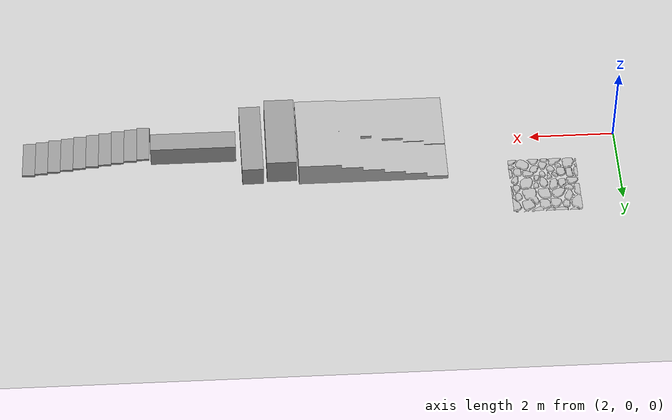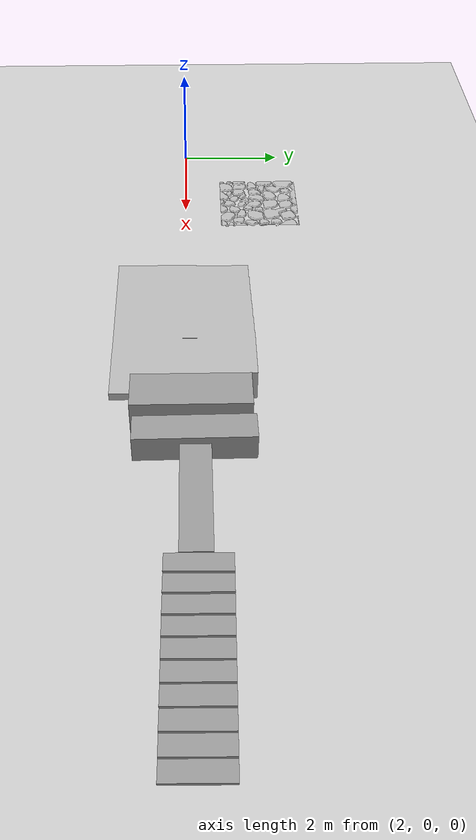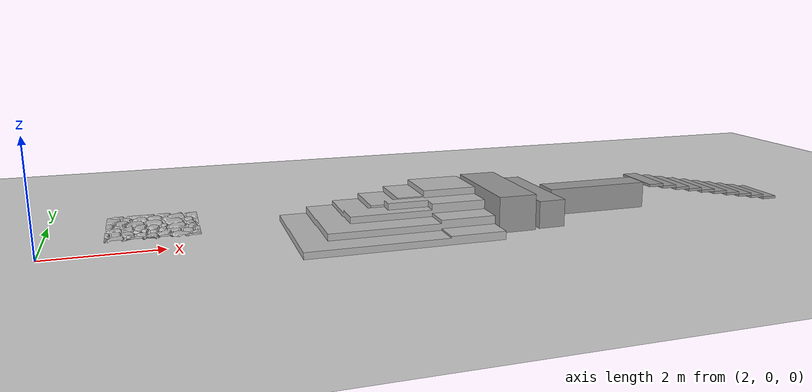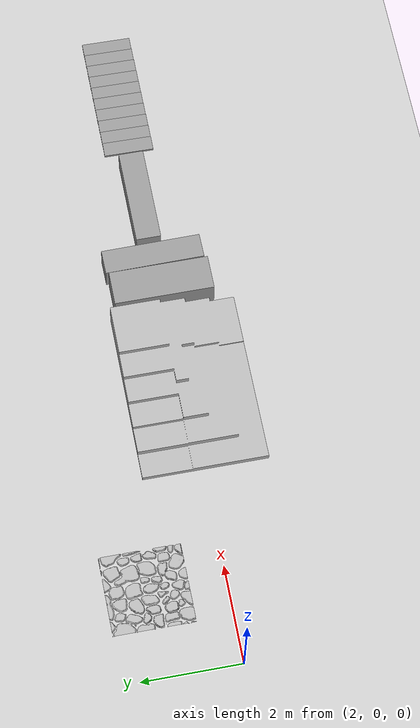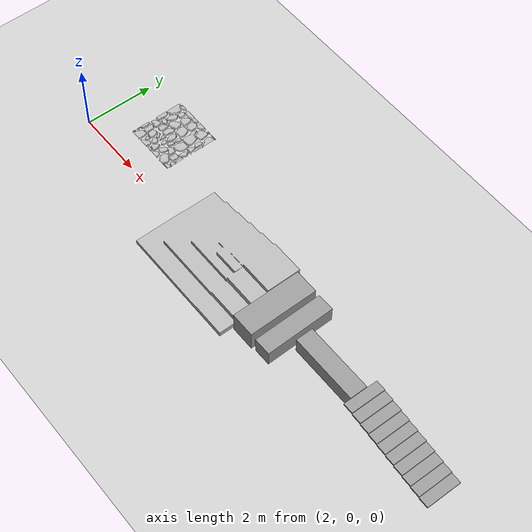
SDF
<sdf version="1.7">
 <world name="default">
  <physics type="ode">
   <max_step_size>0.001</max_step_size>
   <real_time_update_rate>1000</real_time_update_rate>
   <real_time_factor>1</real_time_factor>
   <type>world</type>
   <iters>500</iters>
  </physics>
  <light name="sun" type="directional">
   <pose>0 0 10 0 -0 0</pose>
   <diffuse>0.8 0.8 0.8 1</diffuse>
   <specular>0.2 0.2 0.2 1</specular>
   <attenuation>
    <range>1000</range>
    <constant>0.9</constant>
    <linear>0.01</linear>
    <quadratic>0.001</quadratic>
   </attenuation>
   <direction>-0.5 0.1 -0.9</direction>
   <spot><inner_angle>0</inner_angle><outer_angle>0</outer_angle><falloff>0</falloff></spot>
  </light>
  <model name="ground_plane">
   <static>1</static>
   <link name="link">
    <collision name="collision">
     <geometry><plane><normal>0 0 1</normal><size>100 100</size></plane></geometry>
     <surface>
      <contact><collide_bitmask>65535</collide_bitmask></contact>
      <friction><ode><mu>100</mu><mu2>50</mu2></ode></friction>
     </surface>
    </collision>
    <visual name="visual">
     <cast_shadows>0</cast_shadows>
     <geometry><plane><normal>0 0 1</normal><size>100 100</size></plane></geometry>
     <material>
      <script><uri>file://media/materials/scripts/gazebo.material</uri><name>Gazebo/Grey</name></script>
     </material>
    </visual>
   </link>
  </model>
  <gravity>0 0 -9.8</gravity>
  <magnetic_field>6e-06 2.3e-05 -4.2e-05</magnetic_field>
  <atmosphere type="adiabatic"/>
  <scene><ambient>0.4 0.4 0.4 1</ambient><background>0.7 0.7 0.7 1</background><shadows>1</shadows></scene>
  <spherical_coordinates>
   <surface_model>EARTH_WGS84</surface_model>
   <latitude_deg>0</latitude_deg>
   <longitude_deg>0</longitude_deg>
   <elevation>0</elevation>
   <heading_deg>0</heading_deg>
  </spherical_coordinates>
  <model name="cobblestones">
   <static>1</static>
   <link name="link">
    <pose>0 0 -0.09 0 -0 1.5708</pose>
    <collision name="collision">
     <geometry>
      <mesh><uri>model://cobblestones_1/mesh/cobblestones.dae</uri><scale>0.175 0.175 0.25</scale></mesh>
     </geometry>
     <surface>
      <bounce><restitution_coefficient>0.01</restitution_coefficient><threshold>5</threshold></bounce>
      <friction><ode><mu>10</mu><mu2>10</mu2></ode></friction>
      <contact><ode><soft_cfm>0.001</soft_cfm><kp>100000</kp><kd>1000</kd></ode></contact>
     </surface>
    </collision>
    <visual name="visual">
     <geometry>
      <mesh><uri>model://cobblestones_1/mesh/cobblestones.dae</uri><scale>0.175 0.175 0.25</scale></mesh>
     </geometry>
    </visual>
   </link>
   <pose>3.78633 1.43862 0 0 -0 0</pose>
  </model>
  <model name="complex_stairs">
   <static>1</static>
   <link name="link">
    <pose>0 0 0 1.57 -0 0</pose>
    <collision name="collision">
     <geometry><mesh><uri>model://complex_stairs_1/mesh/stairs.dae</uri><scale>1 1 1</scale></mesh></geometry>
    </collision>
    <visual name="visual">
     <geometry><mesh><uri>model://complex_stairs_1/mesh/stairs.dae</uri><scale>1 1 1</scale></mesh></geometry>
    </visual>
   </link>
   <pose>6.03387 0.703277 0 0 -0 0</pose>
  </model>
  <model name="squre1_clone">
   <pose>9.32206 -1.86773 0 0 -0 1.58167</pose>
   <link name="Stairs_1">
    <visual name="Stairs_1_Visual_0">
     <pose>2 -1.315 0.25 0 -0 0</pose>
     <geometry><box><size>2 0.5 0.5</size></box></geometry>
     <material>
      <script><uri>file://media/materials/scripts/gazebo.material</uri><name>Gazebo/Grey</name></script>
      <ambient>1 1 1 1</ambient>
     </material>
     <meta><layer>0</layer></meta>
    </visual>
    <collision name="Stairs_1_Collision_0">
     <geometry><box><size>2 0.5 0.5</size></box></geometry>
     <pose>2 -1.315 0.25 0 -0 0</pose>
    </collision>
   </link>
   <static>1</static>
  </model>
  <model name="squre1_0">
   <pose>9.98471 1.4749 0 0 -0 0</pose>
   <link name="Stairs_1">
    <visual name="Stairs_1_Visual_0">
     <pose>2 -1.315 0.25 0 -0 0</pose>
     <geometry><box><size>2 0.5 0.5</size></box></geometry>
     <material>
      <script><uri>file://media/materials/scripts/gazebo.material</uri><name>Gazebo/Grey</name></script>
      <ambient>1 1 1 1</ambient>
     </material>
     <meta><layer>0</layer></meta>
    </visual>
    <collision name="Stairs_1_Collision_0">
     <geometry><box><size>2 0.5 0.5</size></box></geometry>
     <pose>2 -1.315 0.25 0 -0 0</pose>
    </collision>
   </link>
   <static>1</static>
  </model>
  <model name="stair11">
   <pose>22.2384 -7.57581 0 0 0 -1.58378</pose>
   <link name="Stairs_5">
    <visual name="Stairs_5_Visual_0">
     <pose>-7.648 -6.4865 0.025 0 -0 0</pose>
     <geometry><box><size>1 0.3 0.05</size></box></geometry>
     <material>
      <script><uri>file://media/materials/scripts/gazebo.material</uri><name>Gazebo/Grey</name></script>
      <ambient>1 1 1 1</ambient>
     </material>
     <meta><layer>0</layer></meta>
    </visual>
    <collision name="Stairs_5_Collision_0">
     <geometry><box><size>1 0.3 0.05</size></box></geometry>
     <pose>-7.648 -6.4865 0.025 0 -0 0</pose>
    </collision>
    <visual name="Stairs_5_Visual_1">
     <pose>-7.648 -6.7865 0.075 0 -0 0</pose>
     <geometry><box><size>1 0.3 0.05</size></box></geometry>
     <material>
      <script><uri>file://media/materials/scripts/gazebo.material</uri><name>Gazebo/Grey</name></script>
      <ambient>1 1 1 1</ambient>
     </material>
     <meta><layer>0</layer></meta>
    </visual>
    <collision name="Stairs_5_Collision_1">
     <geometry><box><size>1 0.3 0.05</size></box></geometry>
     <pose>-7.648 -6.7865 0.075 0 -0 0</pose>
    </collision>
    <visual name="Stairs_5_Visual_2">
     <pose>-7.648 -7.0865 0.125 0 -0 0</pose>
     <geometry><box><size>1 0.3 0.05</size></box></geometry>
     <material>
      <script><uri>file://media/materials/scripts/gazebo.material</uri><name>Gazebo/Grey</name></script>
      <ambient>1 1 1 1</ambient>
     </material>
     <meta><layer>0</layer></meta>
    </visual>
    <collision name="Stairs_5_Collision_2">
     <geometry><box><size>1 0.3 0.05</size></box></geometry>
     <pose>-7.648 -7.0865 0.125 0 -0 0</pose>
    </collision>
    <visual name="Stairs_5_Visual_3">
     <pose>-7.648 -7.3865 0.175 0 -0 0</pose>
     <geometry><box><size>1 0.3 0.05</size></box></geometry>
     <material>
      <script><uri>file://media/materials/scripts/gazebo.material</uri><name>Gazebo/Grey</name></script>
      <ambient>1 1 1 1</ambient>
     </material>
     <meta><layer>0</layer></meta>
    </visual>
    <collision name="Stairs_5_Collision_3">
     <geometry><box><size>1 0.3 0.05</size></box></geometry>
     <pose>-7.648 -7.3865 0.175 0 -0 0</pose>
    </collision>
    <visual name="Stairs_5_Visual_4">
     <pose>-7.648 -7.6865 0.225 0 -0 0</pose>
     <geometry><box><size>1 0.3 0.05</size></box></geometry>
     <material>
      <script><uri>file://media/materials/scripts/gazebo.material</uri><name>Gazebo/Grey</name></script>
      <ambient>1 1 1 1</ambient>
     </material>
     <meta><layer>0</layer></meta>
    </visual>
    <collision name="Stairs_5_Collision_4">
     <geometry><box><size>1 0.3 0.05</size></box></geometry>
     <pose>-7.648 -7.6865 0.225 0 -0 0</pose>
    </collision>
    <visual name="Stairs_5_Visual_5">
     <pose>-7.648 -7.9865 0.275 0 -0 0</pose>
     <geometry><box><size>1 0.3 0.05</size></box></geometry>
     <material>
      <script><uri>file://media/materials/scripts/gazebo.material</uri><name>Gazebo/Grey</name></script>
      <ambient>1 1 1 1</ambient>
     </material>
     <meta><layer>0</layer></meta>
    </visual>
    <collision name="Stairs_5_Collision_5">
     <geometry><box><size>1 0.3 0.05</size></box></geometry>
     <pose>-7.648 -7.9865 0.275 0 -0 0</pose>
    </collision>
    <visual name="Stairs_5_Visual_6">
     <pose>-7.648 -8.2865 0.325 0 -0 0</pose>
     <geometry><box><size>1 0.3 0.05</size></box></geometry>
     <material>
      <script><uri>file://media/materials/scripts/gazebo.material</uri><name>Gazebo/Grey</name></script>
      <ambient>1 1 1 1</ambient>
     </material>
     <meta><layer>0</layer></meta>
    </visual>
    <collision name="Stairs_5_Collision_6">
     <geometry><box><size>1 0.3 0.05</size></box></geometry>
     <pose>-7.648 -8.2865 0.325 0 -0 0</pose>
    </collision>
    <visual name="Stairs_5_Visual_7">
     <pose>-7.648 -8.5865 0.375 0 -0 0</pose>
     <geometry><box><size>1 0.3 0.05</size></box></geometry>
     <material>
      <script><uri>file://media/materials/scripts/gazebo.material</uri><name>Gazebo/Grey</name></script>
      <ambient>1 1 1 1</ambient>
     </material>
     <meta><layer>0</layer></meta>
    </visual>
    <collision name="Stairs_5_Collision_7">
     <geometry><box><size>1 0.3 0.05</size></box></geometry>
     <pose>-7.648 -8.5865 0.375 0 -0 0</pose>
    </collision>
    <visual name="Stairs_5_Visual_8">
     <pose>-7.648 -8.8865 0.425 0 -0 0</pose>
     <geometry><box><size>1 0.3 0.05</size></box></geometry>
     <material>
      <script><uri>file://media/materials/scripts/gazebo.material</uri><name>Gazebo/Grey</name></script>
      <ambient>1 1 1 1</ambient>
     </material>
     <meta><layer>0</layer></meta>
    </visual>
    <collision name="Stairs_5_Collision_8">
     <geometry><box><size>1 0.3 0.05</size></box></geometry>
     <pose>-7.648 -8.8865 0.425 0 -0 0</pose>
    </collision>
    <visual name="Stairs_5_Visual_9">
     <pose>-7.648 -9.1865 0.475 0 -0 0</pose>
     <geometry><box><size>1 0.3 0.05</size></box></geometry>
     <material>
      <script><uri>file://media/materials/scripts/gazebo.material</uri><name>Gazebo/Grey</name></script>
      <ambient>1 1 1 1</ambient>
     </material>
     <meta><layer>0</layer></meta>
    </visual>
    <collision name="Stairs_5_Collision_9">
     <geometry><box><size>1 0.3 0.05</size></box></geometry>
     <pose>-7.648 -9.1865 0.475 0 -0 0</pose>
    </collision>
   </link>
   <static>1</static>
  </model>
  <model name="box3">
   <pose>5.1672 1.60139 0 0 -0 0</pose>
   <link name="Stairs_1">
    <visual name="Stairs_1_Visual_0">
     <pose>4.76 -1.505 0.325 0 -0 0</pose>
     <geometry><box><size>0.7 2 0.65</size></box></geometry>
     <material>
      <script><uri>file://media/materials/scripts/gazebo.material</uri><name>Gazebo/Grey</name></script>
      <ambient>1 1 1 1</ambient>
     </material>
     <meta><layer>0</layer></meta>
    </visual>
    <collision name="Stairs_1_Collision_0">
     <geometry><box><size>0.7 2 0.65</size></box></geometry>
     <pose>4.76 -1.505 0.325 0 -0 0</pose>
    </collision>
   </link>
   <static>1</static>
  </model>
 </world>
</sdf>
